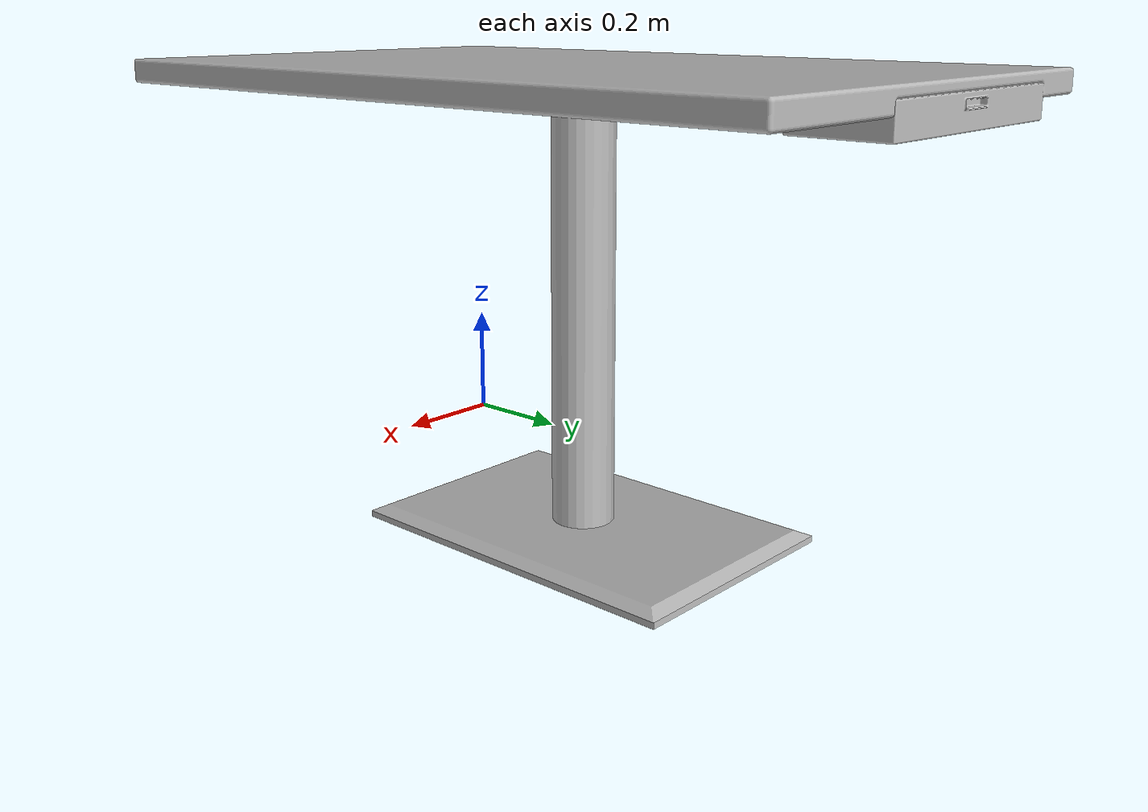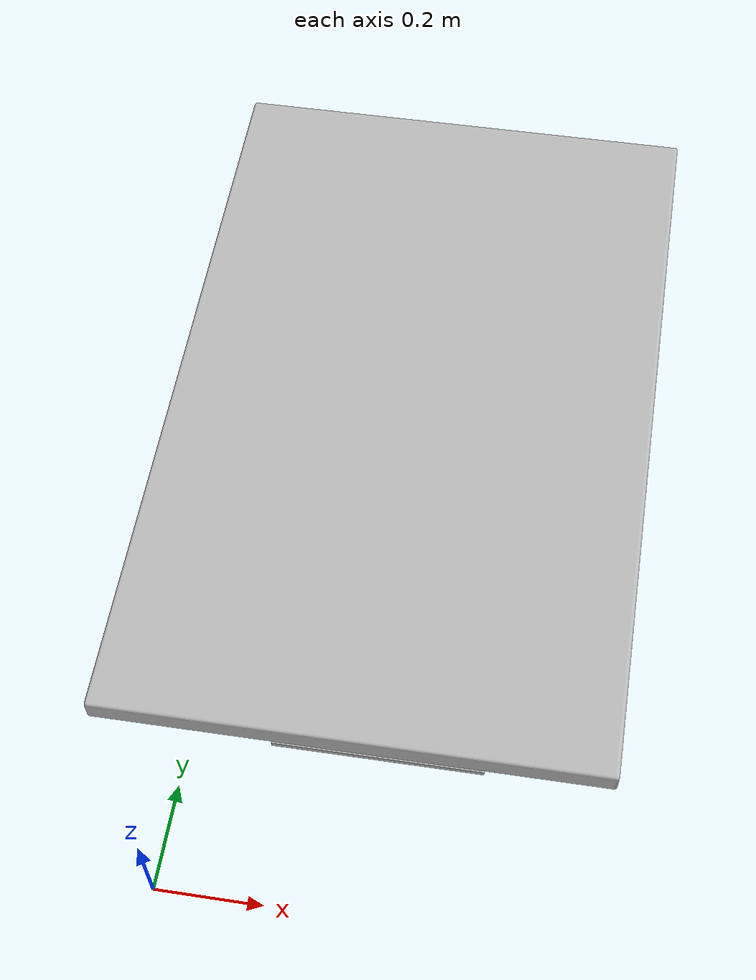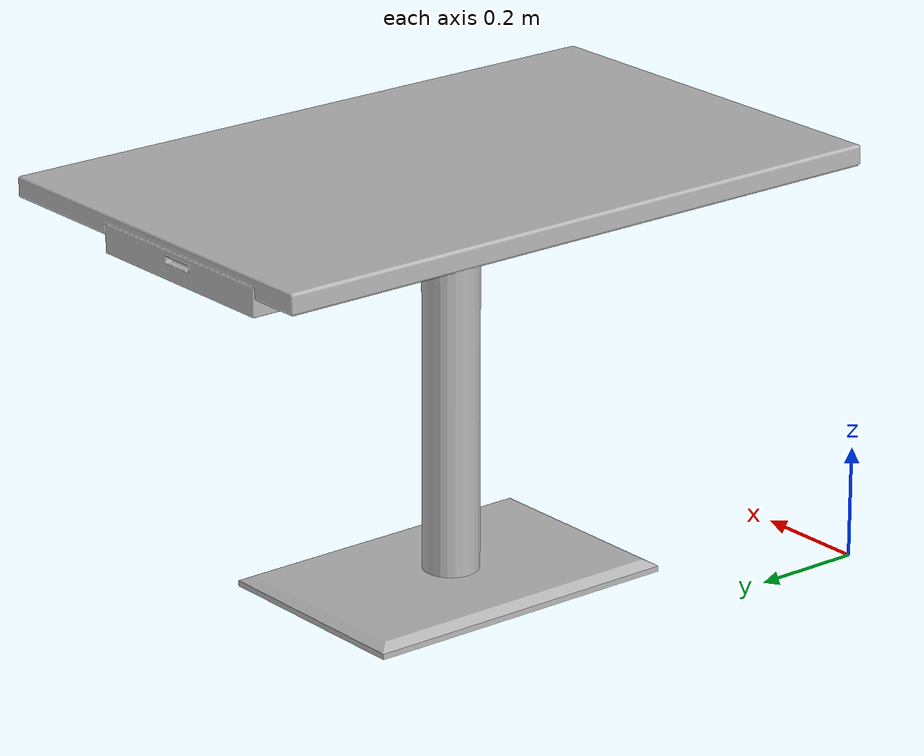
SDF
<?xml version="1.0" ?>
<sdf version="1.6">
  <model name="ramen_table">
    <static>true</static>
     <link name="link">
      <visual name="ramen_table_visual">
        <geometry>
          <mesh>
            <uri>model://ramen_table/meshes/ramen_table.obj</uri>
          </mesh>
        </geometry>
      </visual>
      <collision name="ramen_table_collision">
        <geometry>
          <mesh>
            <uri>model://ramen_table/meshes/ramen_table.obj</uri>
          </mesh>
        </geometry>
      </collision>

    </link>
  </model>

</sdf>
